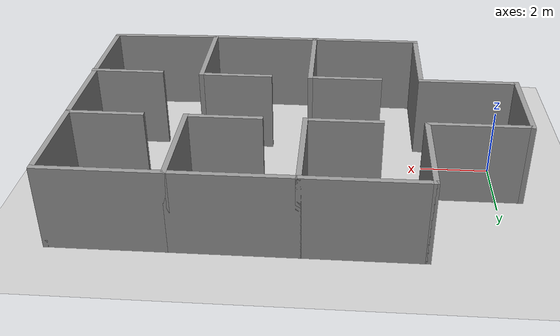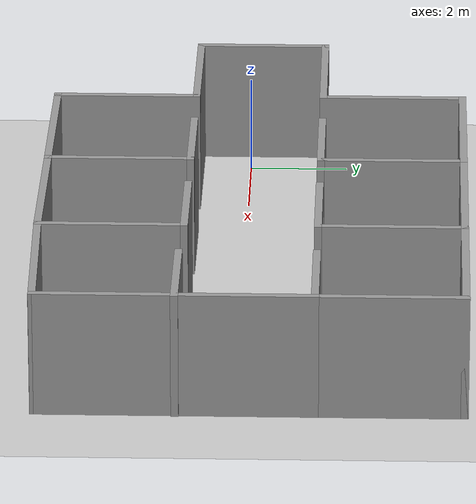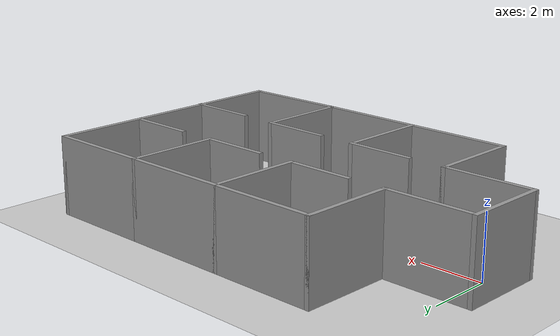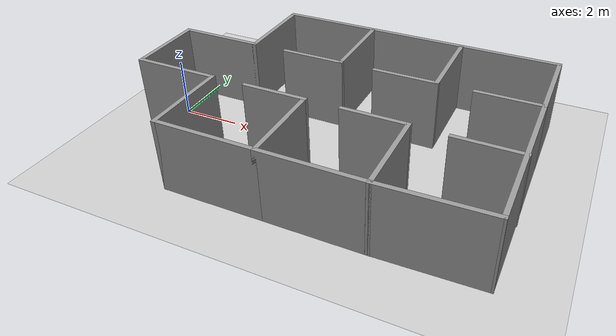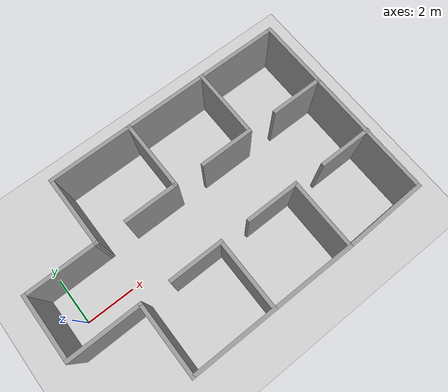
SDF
<sdf version="1.7">
 <world name="default">
  <light name="sun" type="directional">
   <pose>0 0 10 0 -0 0</pose>
   <diffuse>0.8 0.8 0.8 1</diffuse>
   <specular>0.2 0.2 0.2 1</specular>
   <attenuation>
    <range>1000</range>
    <constant>0.9</constant>
    <linear>0.01</linear>
    <quadratic>0.001</quadratic>
   </attenuation>
   <direction>-0.5 0.1 -0.9</direction>
   <spot><inner_angle>0</inner_angle><outer_angle>0</outer_angle><falloff>0</falloff></spot>
  </light>
  <model name="ground_plane">
   <static>1</static>
   <link name="link">
    <collision name="collision">
     <geometry><plane><normal>0 0 1</normal><size>100 100</size></plane></geometry>
     <surface><friction><ode><mu>100</mu><mu2>50</mu2></ode></friction></surface>
    </collision>
    <visual name="visual">
     <cast_shadows>0</cast_shadows>
     <geometry><plane><normal>0 0 1</normal><size>100 100</size></plane></geometry>
     <material>
      <script><uri>file://media/materials/scripts/gazebo.material</uri><name>Gazebo/Grey</name></script>
     </material>
    </visual>
   </link>
  </model>
  <gravity>0 0 -9.8</gravity>
  <magnetic_field>6e-06 2.3e-05 -4.2e-05</magnetic_field>
  <atmosphere type="adiabatic"/>
  <physics type="ode">
   <max_step_size>0.001</max_step_size>
   <real_time_factor>1</real_time_factor>
   <real_time_update_rate>1000</real_time_update_rate>
  </physics>
  <scene><ambient>0.4 0.4 0.4 1</ambient><background>0.7 0.7 0.7 1</background><shadows>1</shadows></scene>
  <spherical_coordinates>
   <surface_model>EARTH_WGS84</surface_model>
   <latitude_deg>0</latitude_deg>
   <longitude_deg>0</longitude_deg>
   <elevation>0</elevation>
   <heading_deg>0</heading_deg>
  </spherical_coordinates>
  <model name="indoors_hotal2">
   <pose>5.74509 0.235908 0 0 -0 0</pose>
   <link name="Wall_0">
    <collision name="Wall_0_Collision">
     <geometry><box><size>3 0.15 2.5</size></box></geometry>
     <pose>0 0 1.25 0 -0 0</pose>
    </collision>
    <visual name="Wall_0_Visual">
     <pose>0 0 1.25 0 -0 0</pose>
     <geometry><box><size>3 0.15 2.5</size></box></geometry>
     <material>
      <script><uri>file://media/materials/scripts/gazebo.material</uri><name>Gazebo/Grey</name></script>
      <ambient>1 1 1 1</ambient>
     </material>
     <meta><layer>0</layer></meta>
    </visual>
    <pose>-5.0383 -1.2989 0 0 -0 0</pose>
   </link>
   <link name="Wall_10">
    <collision name="Wall_10_Collision">
     <geometry><box><size>3.5 0.15 2.5</size></box></geometry>
     <pose>0 0 1.25 0 -0 0</pose>
    </collision>
    <visual name="Wall_10_Visual">
     <pose>0 0 1.25 0 -0 0</pose>
     <geometry><box><size>3.5 0.15 2.5</size></box></geometry>
     <material>
      <script><uri>file://media/materials/scripts/gazebo.material</uri><name>Gazebo/Grey</name></script>
      <ambient>1 1 1 1</ambient>
     </material>
     <meta><layer>0</layer></meta>
    </visual>
    <pose>-1.9383 4.1511 0 0 -0 0</pose>
   </link>
   <link name="Wall_11">
    <collision name="Wall_11_Collision">
     <geometry><box><size>3 0.15 2.5</size></box></geometry>
     <pose>0 0 1.25 0 -0 0</pose>
    </collision>
    <visual name="Wall_11_Visual">
     <pose>0 0 1.25 0 -0 0</pose>
     <geometry><box><size>3 0.15 2.5</size></box></geometry>
     <material>
      <script><uri>file://media/materials/scripts/gazebo.material</uri><name>Gazebo/Grey</name></script>
      <ambient>1 1 1 1</ambient>
     </material>
     <meta><layer>0</layer></meta>
    </visual>
    <pose>-0.2633 2.7261 0 0 -0 -1.5708</pose>
   </link>
   <link name="Wall_12">
    <collision name="Wall_12_Collision">
     <geometry><box><size>2.25 0.15 2.5</size></box></geometry>
     <pose>0 0 1.25 0 -0 0</pose>
    </collision>
    <visual name="Wall_12_Visual">
     <pose>0 0 1.25 0 -0 0</pose>
     <geometry><box><size>2.25 0.15 2.5</size></box></geometry>
     <material>
      <script><uri>file://media/materials/scripts/gazebo.material</uri><name>Gazebo/Grey</name></script>
      <ambient>1 1 1 1</ambient>
     </material>
     <meta><layer>0</layer></meta>
    </visual>
    <pose>-1.3133 1.3011 0 0 -0 3.14159</pose>
   </link>
   <link name="Wall_14">
    <collision name="Wall_14_Collision">
     <geometry><box><size>3.5 0.15 2.5</size></box></geometry>
     <pose>0 0 1.25 0 -0 0</pose>
    </collision>
    <visual name="Wall_14_Visual">
     <pose>0 0 1.25 0 -0 0</pose>
     <geometry><box><size>3.5 0.15 2.5</size></box></geometry>
     <material>
      <script><uri>file://media/materials/scripts/gazebo.material</uri><name>Gazebo/Grey</name></script>
      <ambient>1 1 1 1</ambient>
     </material>
     <meta><layer>0</layer></meta>
    </visual>
    <pose>1.4117 4.1511 0 0 -0 0</pose>
   </link>
   <link name="Wall_15">
    <collision name="Wall_15_Collision">
     <geometry><box><size>3 0.15 2.5</size></box></geometry>
     <pose>0 0 1.25 0 -0 0</pose>
    </collision>
    <visual name="Wall_15_Visual">
     <pose>0 0 1.25 0 -0 0</pose>
     <geometry><box><size>3 0.15 2.5</size></box></geometry>
     <material>
      <script><uri>file://media/materials/scripts/gazebo.material</uri><name>Gazebo/Grey</name></script>
      <ambient>1 1 1 1</ambient>
     </material>
     <meta><layer>0</layer></meta>
    </visual>
    <pose>3.0867 2.7261 0 0 -0 -1.5708</pose>
   </link>
   <link name="Wall_16">
    <collision name="Wall_16_Collision">
     <geometry><box><size>2.25 0.15 2.5</size></box></geometry>
     <pose>0 0 1.25 0 -0 0</pose>
    </collision>
    <visual name="Wall_16_Visual">
     <pose>0 0 1.25 0 -0 0</pose>
     <geometry><box><size>2.25 0.15 2.5</size></box></geometry>
     <material>
      <script><uri>file://media/materials/scripts/gazebo.material</uri><name>Gazebo/Grey</name></script>
      <ambient>1 1 1 1</ambient>
     </material>
     <meta><layer>0</layer></meta>
    </visual>
    <pose>2.0367 1.3011 0 0 -0 3.14159</pose>
   </link>
   <link name="Wall_18">
    <collision name="Wall_18_Collision">
     <geometry><box><size>3.5 0.15 2.5</size></box></geometry>
     <pose>0 0 1.25 0 -0 0</pose>
    </collision>
    <visual name="Wall_18_Visual">
     <pose>0 0 1.25 0 -0 0</pose>
     <geometry><box><size>3.5 0.15 2.5</size></box></geometry>
     <material>
      <script><uri>file://media/materials/scripts/gazebo.material</uri><name>Gazebo/Grey</name></script>
      <ambient>1 1 1 1</ambient>
     </material>
     <meta><layer>0</layer></meta>
    </visual>
    <pose>1.4117 -4.1489 0 0 -0 0</pose>
   </link>
   <link name="Wall_19">
    <collision name="Wall_19_Collision">
     <geometry><box><size>3 0.15 2.5</size></box></geometry>
     <pose>0 0 1.25 0 -0 0</pose>
    </collision>
    <visual name="Wall_19_Visual">
     <pose>0 0 1.25 0 -0 0</pose>
     <geometry><box><size>3 0.15 2.5</size></box></geometry>
     <material>
      <script><uri>file://media/materials/scripts/gazebo.material</uri><name>Gazebo/Grey</name></script>
      <ambient>1 1 1 1</ambient>
     </material>
     <meta><layer>0</layer></meta>
    </visual>
    <pose>3.0867 -2.7239 0 0 -0 1.5708</pose>
   </link>
   <link name="Wall_2">
    <collision name="Wall_2_Collision">
     <geometry><box><size>3 0.15 2.5</size></box></geometry>
     <pose>0 0 1.25 0 -0 0</pose>
    </collision>
    <visual name="Wall_2_Visual">
     <pose>0 0 1.25 0 -0 0</pose>
     <geometry><box><size>3 0.15 2.5</size></box></geometry>
     <material>
      <script><uri>file://media/materials/scripts/gazebo.material</uri><name>Gazebo/Grey</name></script>
      <ambient>1 1 1 1</ambient>
     </material>
     <meta><layer>0</layer></meta>
    </visual>
    <pose>-3.6133 -2.7239 0 0 -0 -1.5708</pose>
   </link>
   <link name="Wall_20">
    <collision name="Wall_20_Collision">
     <geometry><box><size>2.25 0.15 2.5</size></box></geometry>
     <pose>0 0 1.25 0 -0 0</pose>
    </collision>
    <visual name="Wall_20_Visual">
     <pose>0 0 1.25 0 -0 0</pose>
     <geometry><box><size>2.25 0.15 2.5</size></box></geometry>
     <material>
      <script><uri>file://media/materials/scripts/gazebo.material</uri><name>Gazebo/Grey</name></script>
      <ambient>1 1 1 1</ambient>
     </material>
     <meta><layer>0</layer></meta>
    </visual>
    <pose>2.0367 -1.2989 0 0 -0 3.14159</pose>
   </link>
   <link name="Wall_22">
    <collision name="Wall_22_Collision">
     <geometry><box><size>3.5 0.15 2.5</size></box></geometry>
     <pose>0 0 1.25 0 -0 0</pose>
    </collision>
    <visual name="Wall_22_Visual">
     <pose>0 0 1.25 0 -0 0</pose>
     <geometry><box><size>3.5 0.15 2.5</size></box></geometry>
     <material>
      <script><uri>file://media/materials/scripts/gazebo.material</uri><name>Gazebo/Grey</name></script>
      <ambient>1 1 1 1</ambient>
     </material>
     <meta><layer>0</layer></meta>
    </visual>
    <pose>4.7617 4.1511 0 0 -0 0</pose>
   </link>
   <link name="Wall_23">
    <collision name="Wall_23_Collision">
     <geometry><box><size>3 0.15 2.5</size></box></geometry>
     <pose>0 0 1.25 0 -0 0</pose>
    </collision>
    <visual name="Wall_23_Visual">
     <pose>0 0 1.25 0 -0 0</pose>
     <geometry><box><size>3 0.15 2.5</size></box></geometry>
     <material>
      <script><uri>file://media/materials/scripts/gazebo.material</uri><name>Gazebo/Grey</name></script>
      <ambient>1 1 1 1</ambient>
     </material>
     <meta><layer>0</layer></meta>
    </visual>
    <pose>6.4367 2.7261 0 0 -0 -1.5708</pose>
   </link>
   <link name="Wall_24">
    <collision name="Wall_24_Collision">
     <geometry><box><size>2.25 0.15 2.5</size></box></geometry>
     <pose>0 0 1.25 0 -0 0</pose>
    </collision>
    <visual name="Wall_24_Visual">
     <pose>0 0 1.25 0 -0 0</pose>
     <geometry><box><size>2.25 0.15 2.5</size></box></geometry>
     <material>
      <script><uri>file://media/materials/scripts/gazebo.material</uri><name>Gazebo/Grey</name></script>
      <ambient>1 1 1 1</ambient>
     </material>
     <meta><layer>0</layer></meta>
    </visual>
    <pose>5.3867 1.3011 0 0 -0 3.14159</pose>
   </link>
   <link name="Wall_26">
    <collision name="Wall_26_Collision">
     <geometry><box><size>5.5 0.15 2.5</size></box></geometry>
     <pose>0 0 1.25 0 -0 0</pose>
    </collision>
    <visual name="Wall_26_Visual">
     <pose>0 0 1.25 0 -0 0</pose>
     <geometry><box><size>5.5 0.15 2.5</size></box></geometry>
     <material>
      <script><uri>file://media/materials/scripts/gazebo.material</uri><name>Gazebo/Grey</name></script>
      <ambient>1 1 1 1</ambient>
     </material>
     <meta><layer>0</layer></meta>
    </visual>
    <pose>6.4367 -1.3739 0 0 -0 -1.5708</pose>
   </link>
   <link name="Wall_27">
    <collision name="Wall_27_Collision">
     <geometry><box><size>3.50149 0.15 2.5</size></box></geometry>
     <pose>0 0 1.25 0 -0 0</pose>
    </collision>
    <visual name="Wall_27_Visual">
     <pose>0 0 1.25 0 -0 0</pose>
     <geometry><box><size>3.50149 0.15 2.5</size></box></geometry>
     <material>
      <script><uri>file://media/materials/scripts/gazebo.material</uri><name>Gazebo/Grey</name></script>
      <ambient>1 1 1 1</ambient>
     </material>
     <meta><layer>0</layer></meta>
    </visual>
    <pose>4.7617 -4.0989 0 0 -0 -3.11175</pose>
   </link>
   <link name="Wall_29">
    <collision name="Wall_29_Collision">
     <geometry><box><size>2.25 0.15 2.5</size></box></geometry>
     <pose>0 0 1.25 0 -0 0</pose>
    </collision>
    <visual name="Wall_29_Visual">
     <pose>0 0 1.25 0 -0 0</pose>
     <geometry><box><size>2.25 0.15 2.5</size></box></geometry>
     <material>
      <script><uri>file://media/materials/scripts/gazebo.material</uri><name>Gazebo/Grey</name></script>
      <ambient>1 1 1 1</ambient>
     </material>
     <meta><layer>0</layer></meta>
    </visual>
    <pose>5.4133 -1.35836 0 0 -0 0</pose>
   </link>
   <link name="Wall_3">
    <collision name="Wall_3_Collision">
     <geometry><box><size>3.5 0.15 2.5</size></box></geometry>
     <pose>0 0 1.25 0 -0 0</pose>
    </collision>
    <visual name="Wall_3_Visual">
     <pose>0 0 1.25 0 -0 0</pose>
     <geometry><box><size>3.5 0.15 2.5</size></box></geometry>
     <material>
      <script><uri>file://media/materials/scripts/gazebo.material</uri><name>Gazebo/Grey</name></script>
      <ambient>1 1 1 1</ambient>
     </material>
     <meta><layer>0</layer></meta>
    </visual>
    <pose>-1.9383 -4.1489 0 0 -0 0</pose>
   </link>
   <link name="Wall_4">
    <collision name="Wall_4_Collision">
     <geometry><box><size>3 0.15 2.5</size></box></geometry>
     <pose>0 0 1.25 0 -0 0</pose>
    </collision>
    <visual name="Wall_4_Visual">
     <pose>0 0 1.25 0 -0 0</pose>
     <geometry><box><size>3 0.15 2.5</size></box></geometry>
     <material>
      <script><uri>file://media/materials/scripts/gazebo.material</uri><name>Gazebo/Grey</name></script>
      <ambient>1 1 1 1</ambient>
     </material>
     <meta><layer>0</layer></meta>
    </visual>
    <pose>-0.2633 -2.7239 0 0 -0 1.5708</pose>
   </link>
   <link name="Wall_5">
    <collision name="Wall_5_Collision">
     <geometry><box><size>2.25 0.15 2.5</size></box></geometry>
     <pose>0 0 1.25 0 -0 0</pose>
    </collision>
    <visual name="Wall_5_Visual">
     <pose>0 0 1.25 0 -0 0</pose>
     <geometry><box><size>2.25 0.15 2.5</size></box></geometry>
     <material>
      <script><uri>file://media/materials/scripts/gazebo.material</uri><name>Gazebo/Grey</name></script>
      <ambient>1 1 1 1</ambient>
     </material>
     <meta><layer>0</layer></meta>
    </visual>
    <pose>-1.3133 -1.2989 0 0 -0 3.14159</pose>
   </link>
   <link name="Wall_7">
    <collision name="Wall_7_Collision">
     <geometry><box><size>2.75 0.15 2.5</size></box></geometry>
     <pose>0 0 1.25 0 -0 0</pose>
    </collision>
    <visual name="Wall_7_Visual">
     <pose>0 0 1.25 0 -0 0</pose>
     <geometry><box><size>2.75 0.15 2.5</size></box></geometry>
     <material>
      <script><uri>file://media/materials/scripts/gazebo.material</uri><name>Gazebo/Grey</name></script>
      <ambient>1 1 1 1</ambient>
     </material>
     <meta><layer>0</layer></meta>
    </visual>
    <pose>-6.4633 0.001102 0 0 -0 1.5708</pose>
   </link>
   <link name="Wall_8">
    <collision name="Wall_8_Collision">
     <geometry><box><size>3 0.15 2.5</size></box></geometry>
     <pose>0 0 1.25 0 -0 0</pose>
    </collision>
    <visual name="Wall_8_Visual">
     <pose>0 0 1.25 0 -0 0</pose>
     <geometry><box><size>3 0.15 2.5</size></box></geometry>
     <material>
      <script><uri>file://media/materials/scripts/gazebo.material</uri><name>Gazebo/Grey</name></script>
      <ambient>1 1 1 1</ambient>
     </material>
     <meta><layer>0</layer></meta>
    </visual>
    <pose>-5.0383 1.3011 0 0 -0 0</pose>
   </link>
   <link name="Wall_9">
    <collision name="Wall_9_Collision">
     <geometry><box><size>3 0.15 2.5</size></box></geometry>
     <pose>0 0 1.25 0 -0 0</pose>
    </collision>
    <visual name="Wall_9_Visual">
     <pose>0 0 1.25 0 -0 0</pose>
     <geometry><box><size>3 0.15 2.5</size></box></geometry>
     <material>
      <script><uri>file://media/materials/scripts/gazebo.material</uri><name>Gazebo/Grey</name></script>
      <ambient>1 1 1 1</ambient>
     </material>
     <meta><layer>0</layer></meta>
    </visual>
    <pose>-3.6133 2.7261 0 0 -0 1.5708</pose>
   </link>
   <static>1</static>
  </model>
 </world>
</sdf>
